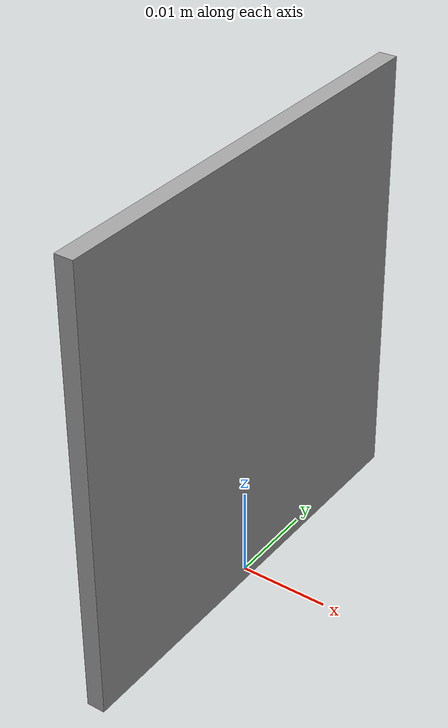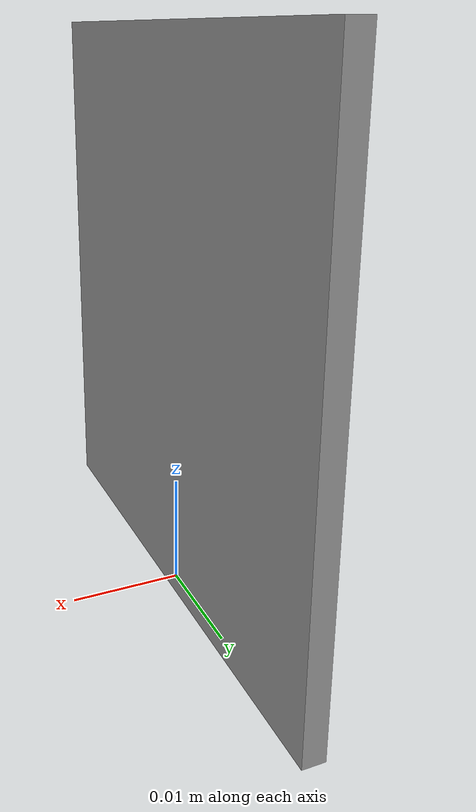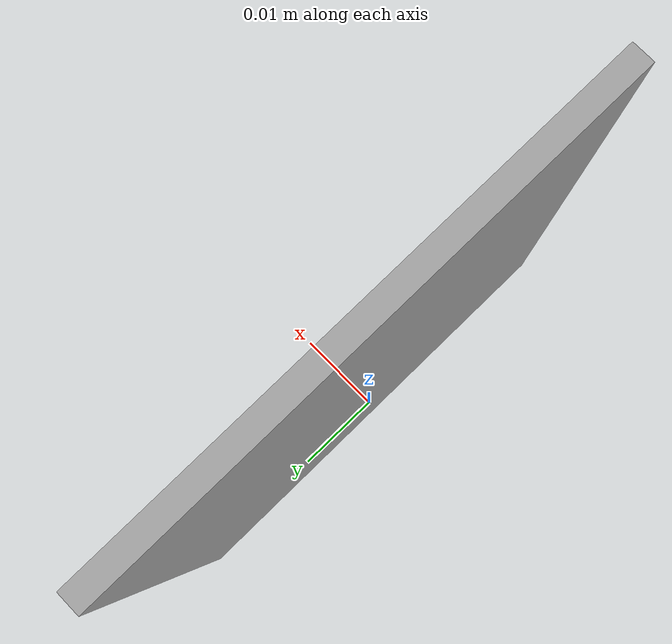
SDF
<?xml version="1.0" ?>
<sdf version="1.4">
  <model name="ar_marker">
    <static>true</static>
    <link name="link">
      <visual name="visual">
        <geometry>
          <mesh>
            <uri>model://ar_marker/meshes/Marker0.dae</uri>
          </mesh>
        </geometry>
      </visual>
    </link>
  </model>
</sdf>
